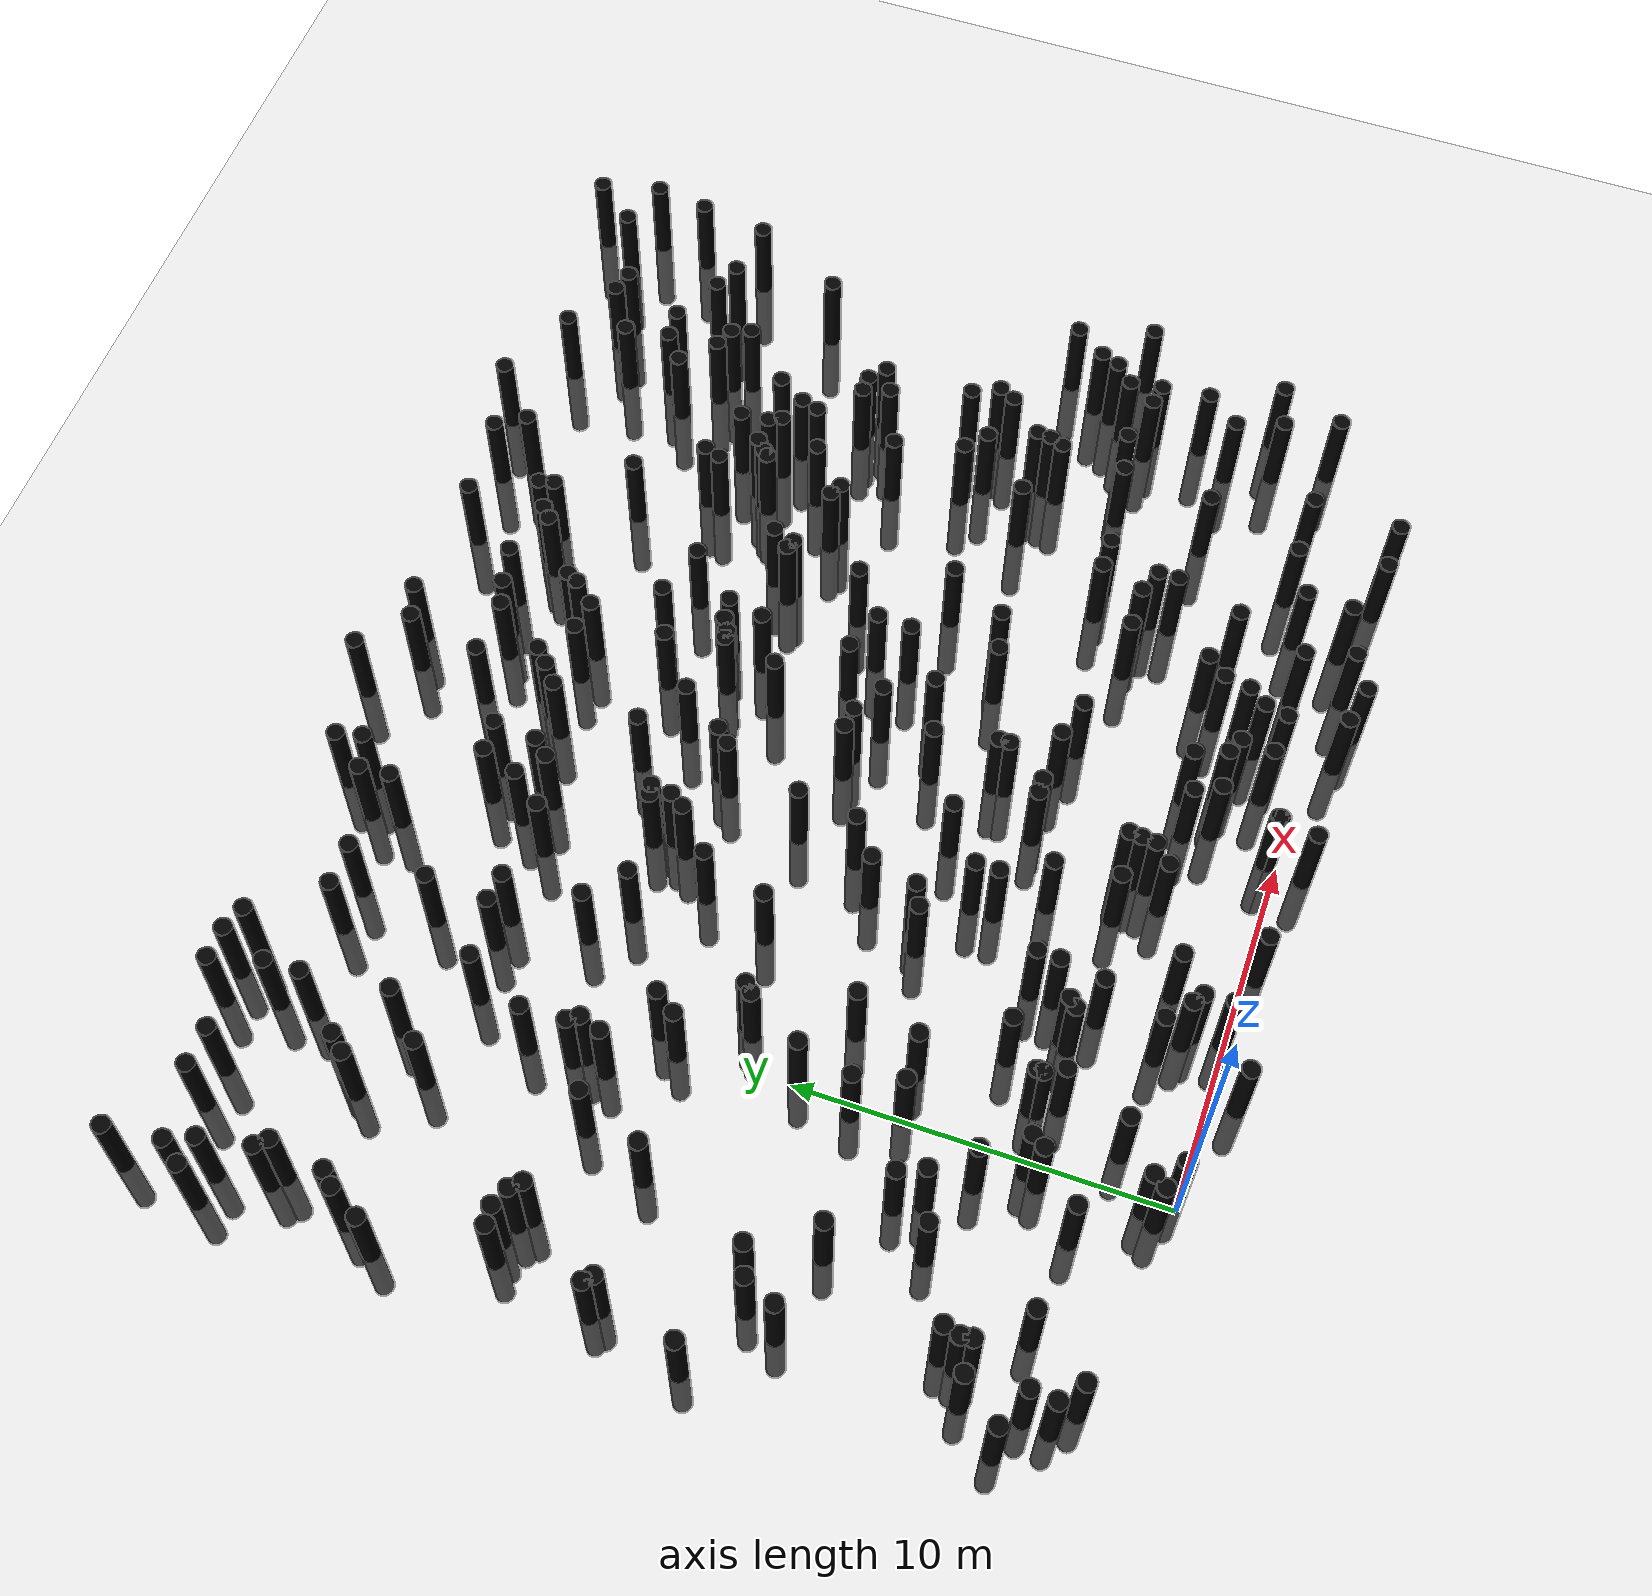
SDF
<sdf version="1.6">
 <world name="huge">
  <include><uri>model://ground_plane</uri></include>
  <include><uri>model://pole</uri><name>pole2</name><pose>-1.81 19.83 0 0 0 0</pose></include>
  <include><uri>model://pole</uri><name>pole5</name><pose>18.44 1.86 0 0 0 0</pose></include>
  <include><uri>model://pole</uri><name>pole7</name><pose>-7.19 12.59 0 0 0 0</pose></include>
  <include><uri>model://pole</uri><name>pole8</name><pose>22.05 4.54 0 0 0 0</pose></include>
  <include><uri>model://pole</uri><name>pole9</name><pose>2.53 5.12 0 0 0 0</pose></include>
  <include><uri>model://pole</uri><name>pole11</name><pose>10.14 0.29 0 0 0 0</pose></include>
  <include><uri>model://pole</uri><name>pole14</name><pose>-7.01 19.04 0 0 0 0</pose></include>
  <include><uri>model://pole</uri><name>pole15</name><pose>10.22 2.6 0 0 0 0</pose></include>
  <include><uri>model://pole</uri><name>pole16</name><pose>23.84 9.63 0 0 0 0</pose></include>
  <include><uri>model://pole</uri><name>pole21</name><pose>16.44 4.69 0 0 0 0</pose></include>
  <include><uri>model://pole</uri><name>pole22</name><pose>10.56 15.59 0 0 0 0</pose></include>
  <include><uri>model://pole</uri><name>pole29</name><pose>11.19 9.9 0 0 0 0</pose></include>
  <include><uri>model://pole</uri><name>pole32</name><pose>14.62 5.5 0 0 0 0</pose></include>
  <include><uri>model://pole</uri><name>pole33</name><pose>-3.95 7.78 0 0 0 0</pose></include>
  <include><uri>model://pole</uri><name>pole34</name><pose>4.9 19.29 0 0 0 0</pose></include>
  <include><uri>model://pole</uri><name>pole38</name><pose>6.32 7.27 0 0 0 0</pose></include>
  <include><uri>model://pole</uri><name>pole47</name><pose>16.76 16.73 0 0 0 0</pose></include>
  <include><uri>model://pole</uri><name>pole48</name><pose>19.7 14.8 0 0 0 0</pose></include>
  <include><uri>model://pole</uri><name>pole56</name><pose>9.98 7.78 0 0 0 0</pose></include>
  <include><uri>model://pole</uri><name>pole57</name><pose>-7.21 2.5 0 0 0 0</pose></include>
  <include><uri>model://pole</uri><name>pole58</name><pose>21.04 11.13 0 0 0 0</pose></include>
  <include><uri>model://pole</uri><name>pole59</name><pose>5.61 18.72 0 0 0 0</pose></include>
  <include><uri>model://pole</uri><name>pole60</name><pose>19.32 4.55 0 0 0 0</pose></include>
  <include><uri>model://pole</uri><name>pole62</name><pose>4.28 3.28 0 0 0 0</pose></include>
  <include><uri>model://pole</uri><name>pole63</name><pose>-0.32 18.33 0 0 0 0</pose></include>
  <include><uri>model://pole</uri><name>pole67</name><pose>-2.12 22.13 0 0 0 0</pose></include>
  <include><uri>model://pole</uri><name>pole72</name><pose>-5.39 14.81 0 0 0 0</pose></include>
  <include><uri>model://pole</uri><name>pole76</name><pose>20.2 1.84 0 0 0 0</pose></include>
  <include><uri>model://pole</uri><name>pole84</name><pose>9.04 11.71 0 0 0 0</pose></include>
  <include><uri>model://pole</uri><name>pole85</name><pose>24.87 22.91 0 0 0 0</pose></include>
  <include><uri>model://pole</uri><name>pole88</name><pose>12.93 21.78 0 0 0 0</pose></include>
  <include><uri>model://pole</uri><name>pole90</name><pose>0.12 7.08 0 0 0 0</pose></include>
  <include><uri>model://pole</uri><name>pole93</name><pose>8.62 20.18 0 0 0 0</pose></include>
  <include><uri>model://pole</uri><name>pole97</name><pose>4.21 18.4 0 0 0 0</pose></include>
  <include><uri>model://pole</uri><name>pole106</name><pose>13.69 2.0 0 0 0 0</pose></include>
  <include><uri>model://pole</uri><name>pole110</name><pose>24.47 7.57 0 0 0 0</pose></include>
  <include><uri>model://pole</uri><name>pole112</name><pose>19.29 17.09 0 0 0 0</pose></include>
  <include><uri>model://pole</uri><name>pole113</name><pose>5.63 15.25 0 0 0 0</pose></include>
  <include><uri>model://pole</uri><name>pole115</name><pose>22.98 8.23 0 0 0 0</pose></include>
  <include><uri>model://pole</uri><name>pole116</name><pose>8.08 21.72 0 0 0 0</pose></include>
  <include><uri>model://pole</uri><name>pole119</name><pose>12.08 1.82 0 0 0 0</pose></include>
  <include><uri>model://pole</uri><name>pole127</name><pose>10.94 19.99 0 0 0 0</pose></include>
  <include><uri>model://pole</uri><name>pole131</name><pose>13.18 0.86 0 0 0 0</pose></include>
  <include><uri>model://pole</uri><name>pole132</name><pose>8.42 3.49 0 0 0 0</pose></include>
  <include><uri>model://pole</uri><name>pole134</name><pose>3.77 1.6 0 0 0 0</pose></include>
  <include><uri>model://pole</uri><name>pole135</name><pose>19.84 9.3 0 0 0 0</pose></include>
  <include><uri>model://pole</uri><name>pole136</name><pose>16.31 18.28 0 0 0 0</pose></include>
  <include><uri>model://pole</uri><name>pole140</name><pose>4.6 23.45 0 0 0 0</pose></include>
  <include><uri>model://pole</uri><name>pole142</name><pose>17.06 0.02 0 0 0 0</pose></include>
  <include><uri>model://pole</uri><name>pole144</name><pose>9.62 21.66 0 0 0 0</pose></include>
  <include><uri>model://pole</uri><name>pole148</name><pose>-6.93 22.61 0 0 0 0</pose></include>
  <include><uri>model://pole</uri><name>pole150</name><pose>17.14 24.68 0 0 0 0</pose></include>
  <include><uri>model://pole</uri><name>pole156</name><pose>-6.97 12.39 0 0 0 0</pose></include>
  <include><uri>model://pole</uri><name>pole158</name><pose>1.39 4.01 0 0 0 0</pose></include>
  <include><uri>model://pole</uri><name>pole160</name><pose>14.68 -0.92 0 0 0 0</pose></include>
  <include><uri>model://pole</uri><name>pole162</name><pose>8.78 16.02 0 0 0 0</pose></include>
  <include><uri>model://pole</uri><name>pole167</name><pose>19.58 21.95 0 0 0 0</pose></include>
  <include><uri>model://pole</uri><name>pole173</name><pose>10.79 15.63 0 0 0 0</pose></include>
  <include><uri>model://pole</uri><name>pole174</name><pose>0.3 13.6 0 0 0 0</pose></include>
  <include><uri>model://pole</uri><name>pole177</name><pose>-3.39 20.68 0 0 0 0</pose></include>
  <include><uri>model://pole</uri><name>pole178</name><pose>-5.07 9.39 0 0 0 0</pose></include>
  <include><uri>model://pole</uri><name>pole180</name><pose>22.59 6.83 0 0 0 0</pose></include>
  <include><uri>model://pole</uri><name>pole181</name><pose>19.92 19.27 0 0 0 0</pose></include>
  <include><uri>model://pole</uri><name>pole183</name><pose>1.92 8.93 0 0 0 0</pose></include>
  <include><uri>model://pole</uri><name>pole184</name><pose>16.18 6.75 0 0 0 0</pose></include>
  <include><uri>model://pole</uri><name>pole185</name><pose>-7.5 18.17 0 0 0 0</pose></include>
  <include><uri>model://pole</uri><name>pole186</name><pose>-2.18 6.58 0 0 0 0</pose></include>
  <include><uri>model://pole</uri><name>pole189</name><pose>12.63 21.5 0 0 0 0</pose></include>
  <include><uri>model://pole</uri><name>pole191</name><pose>9.96 -0.72 0 0 0 0</pose></include>
  <include><uri>model://pole</uri><name>pole193</name><pose>18.75 -0.55 0 0 0 0</pose></include>
  <include><uri>model://pole</uri><name>pole204</name><pose>24.36 19.47 0 0 0 0</pose></include>
  <include><uri>model://pole</uri><name>pole208</name><pose>0.37 22.46 0 0 0 0</pose></include>
  <include><uri>model://pole</uri><name>pole209</name><pose>3.7 23.16 0 0 0 0</pose></include>
  <include><uri>model://pole</uri><name>pole210</name><pose>13.8 21.81 0 0 0 0</pose></include>
  <include><uri>model://pole</uri><name>pole214</name><pose>5.62 9.81 0 0 0 0</pose></include>
  <include><uri>model://pole</uri><name>pole216</name><pose>-7.79 10.07 0 0 0 0</pose></include>
  <include><uri>model://pole</uri><name>pole218</name><pose>-1.0 24.19 0 0 0 0</pose></include>
  <include><uri>model://pole</uri><name>pole219</name><pose>-1.67 24.43 0 0 0 0</pose></include>
  <include><uri>model://pole</uri><name>pole221</name><pose>-1.16 14.54 0 0 0 0</pose></include>
  <include><uri>model://pole</uri><name>pole223</name><pose>10.29 14.09 0 0 0 0</pose></include>
  <include><uri>model://pole</uri><name>pole224</name><pose>8.81 6.35 0 0 0 0</pose></include>
  <include><uri>model://pole</uri><name>pole226</name><pose>22.46 7.73 0 0 0 0</pose></include>
  <include><uri>model://pole</uri><name>pole230</name><pose>11.51 17.73 0 0 0 0</pose></include>
  <include><uri>model://pole</uri><name>pole233</name><pose>18.77 11.49 0 0 0 0</pose></include>
  <include><uri>model://pole</uri><name>pole236</name><pose>17.77 17.75 0 0 0 0</pose></include>
  <include><uri>model://pole</uri><name>pole240</name><pose>20.08 -0.59 0 0 0 0</pose></include>
  <include><uri>model://pole</uri><name>pole245</name><pose>1.4 4.17 0 0 0 0</pose></include>
  <include><uri>model://pole</uri><name>pole247</name><pose>11.77 15.91 0 0 0 0</pose></include>
  <include><uri>model://pole</uri><name>pole249</name><pose>13.78 8.87 0 0 0 0</pose></include>
  <include><uri>model://pole</uri><name>pole251</name><pose>16.16 17.82 0 0 0 0</pose></include>
  <include><uri>model://pole</uri><name>pole253</name><pose>3.11 -0.71 0 0 0 0</pose></include>
  <include><uri>model://pole</uri><name>pole259</name><pose>-0.96 15.13 0 0 0 0</pose></include>
  <include><uri>model://pole</uri><name>pole262</name><pose>4.48 5.09 0 0 0 0</pose></include>
  <include><uri>model://pole</uri><name>pole263</name><pose>-1.16 15.42 0 0 0 0</pose></include>
  <include><uri>model://pole</uri><name>pole265</name><pose>12.01 0.94 0 0 0 0</pose></include>
  <include><uri>model://pole</uri><name>pole267</name><pose>-1.88 5.89 0 0 0 0</pose></include>
  <include><uri>model://pole</uri><name>pole268</name><pose>22.76 5.48 0 0 0 0</pose></include>
  <include><uri>model://pole</uri><name>pole270</name><pose>10.14 0.33 0 0 0 0</pose></include>
  <include><uri>model://pole</uri><name>pole273</name><pose>-2.92 18.71 0 0 0 0</pose></include>
  <include><uri>model://pole</uri><name>pole275</name><pose>7.89 14.79 0 0 0 0</pose></include>
  <include><uri>model://pole</uri><name>pole282</name><pose>-5.3 23.67 0 0 0 0</pose></include>
  <include><uri>model://pole</uri><name>pole283</name><pose>9.6 11.65 0 0 0 0</pose></include>
  <include><uri>model://pole</uri><name>pole284</name><pose>7.91 2.63 0 0 0 0</pose></include>
  <include><uri>model://pole</uri><name>pole291</name><pose>17.37 15.35 0 0 0 0</pose></include>
  <include><uri>model://pole</uri><name>pole295</name><pose>14.13 14.91 0 0 0 0</pose></include>
  <include><uri>model://pole</uri><name>pole299</name><pose>-6.33 3.59 0 0 0 0</pose></include>
  <include><uri>model://pole</uri><name>pole304</name><pose>17.03 6.75 0 0 0 0</pose></include>
  <include><uri>model://pole</uri><name>pole309</name><pose>-7.7 22.72 0 0 0 0</pose></include>
  <include><uri>model://pole</uri><name>pole311</name><pose>19.03 20.11 0 0 0 0</pose></include>
  <include><uri>model://pole</uri><name>pole313</name><pose>-5.6 0.9 0 0 0 0</pose></include>
  <include><uri>model://pole</uri><name>pole316</name><pose>24.65 21.41 0 0 0 0</pose></include>
  <include><uri>model://pole</uri><name>pole317</name><pose>4.44 4.48 0 0 0 0</pose></include>
  <include><uri>model://pole</uri><name>pole318</name><pose>5.42 15.77 0 0 0 0</pose></include>
  <include><uri>model://pole</uri><name>pole321</name><pose>-0.46 3.43 0 0 0 0</pose></include>
  <include><uri>model://pole</uri><name>pole323</name><pose>16.44 5.25 0 0 0 0</pose></include>
  <include><uri>model://pole</uri><name>pole326</name><pose>15.25 0.9 0 0 0 0</pose></include>
  <include><uri>model://pole</uri><name>pole328</name><pose>13.84 12.92 0 0 0 0</pose></include>
  <include><uri>model://pole</uri><name>pole331</name><pose>7.76 8.31 0 0 0 0</pose></include>
  <include><uri>model://pole</uri><name>pole332</name><pose>15.98 14.48 0 0 0 0</pose></include>
  <include><uri>model://pole</uri><name>pole336</name><pose>1.37 7.16 0 0 0 0</pose></include>
  <include><uri>model://pole</uri><name>pole339</name><pose>6.12 20.39 0 0 0 0</pose></include>
  <include><uri>model://pole</uri><name>pole341</name><pose>10.55 1.93 0 0 0 0</pose></include>
  <include><uri>model://pole</uri><name>pole342</name><pose>7.73 19.37 0 0 0 0</pose></include>
  <include><uri>model://pole</uri><name>pole348</name><pose>13.83 2.72 0 0 0 0</pose></include>
  <include><uri>model://pole</uri><name>pole349</name><pose>11.47 12.39 0 0 0 0</pose></include>
  <include><uri>model://pole</uri><name>pole350</name><pose>-5.39 4.38 0 0 0 0</pose></include>
  <include><uri>model://pole</uri><name>pole355</name><pose>-0.24 3.79 0 0 0 0</pose></include>
  <include><uri>model://pole</uri><name>pole357</name><pose>-2.78 14.43 0 0 0 0</pose></include>
  <include><uri>model://pole</uri><name>pole359</name><pose>5.38 14.85 0 0 0 0</pose></include>
  <include><uri>model://pole</uri><name>pole361</name><pose>17.93 9.55 0 0 0 0</pose></include>
  <include><uri>model://pole</uri><name>pole365</name><pose>-1.2 16.64 0 0 0 0</pose></include>
  <include><uri>model://pole</uri><name>pole366</name><pose>15.15 19.98 0 0 0 0</pose></include>
  <include><uri>model://pole</uri><name>pole367</name><pose>20.68 11.87 0 0 0 0</pose></include>
  <include><uri>model://pole</uri><name>pole369</name><pose>4.43 24.14 0 0 0 0</pose></include>
  <include><uri>model://pole</uri><name>pole376</name><pose>13.32 1.49 0 0 0 0</pose></include>
  <include><uri>model://pole</uri><name>pole380</name><pose>7.49 16.89 0 0 0 0</pose></include>
  <include><uri>model://pole</uri><name>pole382</name><pose>5.71 15.83 0 0 0 0</pose></include>
  <include><uri>model://pole</uri><name>pole383</name><pose>21.99 20.03 0 0 0 0</pose></include>
  <include><uri>model://pole</uri><name>pole384</name><pose>13.59 -0.68 0 0 0 0</pose></include>
  <include><uri>model://pole</uri><name>pole387</name><pose>8.46 3.83 0 0 0 0</pose></include>
  <include><uri>model://pole</uri><name>pole394</name><pose>0.18 9.88 0 0 0 0</pose></include>
  <include><uri>model://pole</uri><name>pole399</name><pose>18.62 15.79 0 0 0 0</pose></include>
  <include><uri>model://pole</uri><name>pole400</name><pose>4.67 8.24 0 0 0 0</pose></include>
  <include><uri>model://pole</uri><name>pole406</name><pose>-6.21 8.21 0 0 0 0</pose></include>
  <include><uri>model://pole</uri><name>pole407</name><pose>8.39 3.1 0 0 0 0</pose></include>
  <include><uri>model://pole</uri><name>pole411</name><pose>6.0 19.17 0 0 0 0</pose></include>
  <include><uri>model://pole</uri><name>pole414</name><pose>9.36 24.08 0 0 0 0</pose></include>
  <include><uri>model://pole</uri><name>pole415</name><pose>15.76 5.52 0 0 0 0</pose></include>
  <include><uri>model://pole</uri><name>pole417</name><pose>-6.18 15.29 0 0 0 0</pose></include>
  <include><uri>model://pole</uri><name>pole419</name><pose>9.22 6.36 0 0 0 0</pose></include>
  <include><uri>model://pole</uri><name>pole421</name><pose>20.81 10.68 0 0 0 0</pose></include>
  <include><uri>model://pole</uri><name>pole424</name><pose>20.17 14.78 0 0 0 0</pose></include>
  <include><uri>model://pole</uri><name>pole426</name><pose>21.47 22.59 0 0 0 0</pose></include>
  <include><uri>model://pole</uri><name>pole430</name><pose>9.99 7.48 0 0 0 0</pose></include>
  <include><uri>model://pole</uri><name>pole431</name><pose>10.17 17.17 0 0 0 0</pose></include>
  <include><uri>model://pole</uri><name>pole433</name><pose>-5.47 3.64 0 0 0 0</pose></include>
  <include><uri>model://pole</uri><name>pole440</name><pose>15.14 24.16 0 0 0 0</pose></include>
  <include><uri>model://pole</uri><name>pole447</name><pose>6.81 12.19 0 0 0 0</pose></include>
  <include><uri>model://pole</uri><name>pole448</name><pose>23.69 3.54 0 0 0 0</pose></include>
  <include><uri>model://pole</uri><name>pole450</name><pose>-1.59 2.28 0 0 0 0</pose></include>
  <include><uri>model://pole</uri><name>pole455</name><pose>15.91 2.84 0 0 0 0</pose></include>
  <include><uri>model://pole</uri><name>pole458</name><pose>17.07 17.0 0 0 0 0</pose></include>
  <include><uri>model://pole</uri><name>pole459</name><pose>-7.41 24.87 0 0 0 0</pose></include>
  <include><uri>model://pole</uri><name>pole463</name><pose>1.25 18.53 0 0 0 0</pose></include>
  <include><uri>model://pole</uri><name>pole468</name><pose>10.4 19.38 0 0 0 0</pose></include>
  <include><uri>model://pole</uri><name>pole477</name><pose>6.58 10.53 0 0 0 0</pose></include>
  <include><uri>model://pole</uri><name>pole479</name><pose>-6.22 1.39 0 0 0 0</pose></include>
  <include><uri>model://pole</uri><name>pole480</name><pose>-5.65 15.08 0 0 0 0</pose></include>
  <include><uri>model://pole</uri><name>pole482</name><pose>8.47 23.79 0 0 0 0</pose></include>
  <include><uri>model://pole</uri><name>pole484</name><pose>4.73 0.09 0 0 0 0</pose></include>
  <include><uri>model://pole</uri><name>pole486</name><pose>1.67 3.49 0 0 0 0</pose></include>
  <include><uri>model://pole</uri><name>pole493</name><pose>12.6 11.97 0 0 0 0</pose></include>
  <include><uri>model://pole</uri><name>pole502</name><pose>1.53 22.45 0 0 0 0</pose></include>
  <include><uri>model://pole</uri><name>pole503</name><pose>11.31 2.89 0 0 0 0</pose></include>
  <include><uri>model://pole</uri><name>pole504</name><pose>1.23 11.61 0 0 0 0</pose></include>
  <include><uri>model://pole</uri><name>pole505</name><pose>7.21 3.68 0 0 0 0</pose></include>
  <include><uri>model://pole</uri><name>pole506</name><pose>17.81 16.96 0 0 0 0</pose></include>
  <include><uri>model://pole</uri><name>pole507</name><pose>17.13 1.3 0 0 0 0</pose></include>
  <include><uri>model://pole</uri><name>pole510</name><pose>22.01 6.95 0 0 0 0</pose></include>
  <include><uri>model://pole</uri><name>pole511</name><pose>11.62 2.04 0 0 0 0</pose></include>
  <include><uri>model://pole</uri><name>pole513</name><pose>23.06 1.77 0 0 0 0</pose></include>
  <include><uri>model://pole</uri><name>pole514</name><pose>22.49 3.26 0 0 0 0</pose></include>
  <include><uri>model://pole</uri><name>pole515</name><pose>11.56 14.9 0 0 0 0</pose></include>
  <include><uri>model://pole</uri><name>pole517</name><pose>-5.83 9.09 0 0 0 0</pose></include>
  <include><uri>model://pole</uri><name>pole528</name><pose>-0.25 0.78 0 0 0 0</pose></include>
  <include><uri>model://pole</uri><name>pole530</name><pose>16.33 14.3 0 0 0 0</pose></include>
  <include><uri>model://pole</uri><name>pole535</name><pose>20.47 19.04 0 0 0 0</pose></include>
  <include><uri>model://pole</uri><name>pole537</name><pose>20.85 22.75 0 0 0 0</pose></include>
  <include><uri>model://pole</uri><name>pole546</name><pose>3.71 12.03 0 0 0 0</pose></include>
  <include><uri>model://pole</uri><name>pole552</name><pose>20.63 14.39 0 0 0 0</pose></include>
  <include><uri>model://pole</uri><name>pole558</name><pose>-6.68 19.39 0 0 0 0</pose></include>
  <include><uri>model://pole</uri><name>pole562</name><pose>-6.41 20.93 0 0 0 0</pose></include>
  <include><uri>model://pole</uri><name>pole565</name><pose>-3.16 5.46 0 0 0 0</pose></include>
  <include><uri>model://pole</uri><name>pole566</name><pose>4.68 0.87 0 0 0 0</pose></include>
  <include><uri>model://pole</uri><name>pole568</name><pose>24.46 24.57 0 0 0 0</pose></include>
  <include><uri>model://pole</uri><name>pole570</name><pose>10.29 21.89 0 0 0 0</pose></include>
  <include><uri>model://pole</uri><name>pole572</name><pose>7.52 14.41 0 0 0 0</pose></include>
  <include><uri>model://pole</uri><name>pole576</name><pose>-0.21 8.36 0 0 0 0</pose></include>
  <include><uri>model://pole</uri><name>pole577</name><pose>14.34 15.54 0 0 0 0</pose></include>
  <include><uri>model://pole</uri><name>pole587</name><pose>-4.26 23.62 0 0 0 0</pose></include>
  <include><uri>model://pole</uri><name>pole588</name><pose>14.29 3.27 0 0 0 0</pose></include>
  <include><uri>model://pole</uri><name>pole600</name><pose>1.36 20.27 0 0 0 0</pose></include>
  <include><uri>model://pole</uri><name>pole601</name><pose>-2.54 24.46 0 0 0 0</pose></include>
  <include><uri>model://pole</uri><name>pole605</name><pose>0.31 0.12 0 0 0 0</pose></include>
  <include><uri>model://pole</uri><name>pole607</name><pose>3.49 3.95 0 0 0 0</pose></include>
  <include><uri>model://pole</uri><name>pole610</name><pose>13.88 15.01 0 0 0 0</pose></include>
  <include><uri>model://pole</uri><name>pole611</name><pose>19.89 9.7 0 0 0 0</pose></include>
  <include><uri>model://pole</uri><name>pole621</name><pose>2.03 18.45 0 0 0 0</pose></include>
  <include><uri>model://pole</uri><name>pole625</name><pose>11.78 6.0 0 0 0 0</pose></include>
  <include><uri>model://pole</uri><name>pole627</name><pose>-4.32 2.46 0 0 0 0</pose></include>
  <include><uri>model://pole</uri><name>pole631</name><pose>5.26 8.49 0 0 0 0</pose></include>
  <include><uri>model://pole</uri><name>pole632</name><pose>12.95 17.27 0 0 0 0</pose></include>
  <include><uri>model://pole</uri><name>pole633</name><pose>6.31 6.63 0 0 0 0</pose></include>
  <include><uri>model://pole</uri><name>pole637</name><pose>23.1 16.87 0 0 0 0</pose></include>
  <include><uri>model://pole</uri><name>pole639</name><pose>1.01 11.4 0 0 0 0</pose></include>
  <include><uri>model://pole</uri><name>pole640</name><pose>9.7 9.47 0 0 0 0</pose></include>
  <include><uri>model://pole</uri><name>pole643</name><pose>19.36 10.99 0 0 0 0</pose></include>
  <include><uri>model://pole</uri><name>pole646</name><pose>4.32 13.87 0 0 0 0</pose></include>
  <include><uri>model://pole</uri><name>pole648</name><pose>14.71 10.48 0 0 0 0</pose></include>
  <include><uri>model://pole</uri><name>pole650</name><pose>12.55 11.02 0 0 0 0</pose></include>
  <include><uri>model://pole</uri><name>pole657</name><pose>18.78 16.28 0 0 0 0</pose></include>
  <include><uri>model://pole</uri><name>pole660</name><pose>-7.24 23.33 0 0 0 0</pose></include>
  <include><uri>model://pole</uri><name>pole661</name><pose>-6.16 2.08 0 0 0 0</pose></include>
  <include><uri>model://pole</uri><name>pole662</name><pose>15.66 -0.41 0 0 0 0</pose></include>
  <include><uri>model://pole</uri><name>pole664</name><pose>20.66 18.5 0 0 0 0</pose></include>
  <include><uri>model://pole</uri><name>pole665</name><pose>-2.15 23.1 0 0 0 0</pose></include>
  <include><uri>model://pole</uri><name>pole667</name><pose>10.49 11.13 0 0 0 0</pose></include>
  <include><uri>model://pole</uri><name>pole671</name><pose>8.24 19.8 0 0 0 0</pose></include>
  <include><uri>model://pole</uri><name>pole673</name><pose>20.64 7.29 0 0 0 0</pose></include>
  <include><uri>model://pole</uri><name>pole675</name><pose>10.73 6.29 0 0 0 0</pose></include>
  <include><uri>model://pole</uri><name>pole677</name><pose>-5.51 3.94 0 0 0 0</pose></include>
  <include><uri>model://pole</uri><name>pole678</name><pose>19.7 8.92 0 0 0 0</pose></include>
  <include><uri>model://pole</uri><name>pole679</name><pose>-3.54 12.61 0 0 0 0</pose></include>
  <include><uri>model://pole</uri><name>pole680</name><pose>20.58 20.74 0 0 0 0</pose></include>
  <include><uri>model://pole</uri><name>pole684</name><pose>-0.99 4.89 0 0 0 0</pose></include>
  <include><uri>model://pole</uri><name>pole687</name><pose>-6.67 15.24 0 0 0 0</pose></include>
  <include><uri>model://pole</uri><name>pole692</name><pose>-0.49 0.43 0 0 0 0</pose></include>
  <include><uri>model://pole</uri><name>pole695</name><pose>13.7 22.22 0 0 0 0</pose></include>
  <include><uri>model://pole</uri><name>pole708</name><pose>3.18 15.49 0 0 0 0</pose></include>
  <include><uri>model://pole</uri><name>pole711</name><pose>4.39 1.07 0 0 0 0</pose></include>
  <include><uri>model://pole</uri><name>pole712</name><pose>11.15 15.83 0 0 0 0</pose></include>
  <include><uri>model://pole</uri><name>pole718</name><pose>6.75 -0.26 0 0 0 0</pose></include>
  <include><uri>model://pole</uri><name>pole720</name><pose>9.58 19.51 0 0 0 0</pose></include>
  <include><uri>model://pole</uri><name>pole723</name><pose>-3.77 20.24 0 0 0 0</pose></include>
  <include><uri>model://pole</uri><name>pole724</name><pose>0.97 1.71 0 0 0 0</pose></include>
  <include><uri>model://pole</uri><name>pole725</name><pose>15.65 23.37 0 0 0 0</pose></include>
  <include><uri>model://pole</uri><name>pole726</name><pose>18.27 13.39 0 0 0 0</pose></include>
  <include><uri>model://pole</uri><name>pole732</name><pose>11.33 22.12 0 0 0 0</pose></include>
  <include><uri>model://pole</uri><name>pole734</name><pose>11.11 20.31 0 0 0 0</pose></include>
  <include><uri>model://pole</uri><name>pole738</name><pose>23.51 23.41 0 0 0 0</pose></include>
  <include><uri>model://pole</uri><name>pole741</name><pose>19.51 7.08 0 0 0 0</pose></include>
  <include><uri>model://pole</uri><name>pole742</name><pose>-0.12 13.01 0 0 0 0</pose></include>
  <include><uri>model://pole</uri><name>pole744</name><pose>3.76 22.31 0 0 0 0</pose></include>
  <include><uri>model://pole</uri><name>pole750</name><pose>19.36 23.63 0 0 0 0</pose></include>
  <include><uri>model://pole</uri><name>pole752</name><pose>12.89 23.98 0 0 0 0</pose></include>
  <include><uri>model://pole</uri><name>pole755</name><pose>2.2 16.35 0 0 0 0</pose></include>
  <include><uri>model://pole</uri><name>pole756</name><pose>19.76 20.69 0 0 0 0</pose></include>
  <include><uri>model://pole</uri><name>pole762</name><pose>23.2 8.76 0 0 0 0</pose></include>
  <include><uri>model://pole</uri><name>pole763</name><pose>19.94 14.06 0 0 0 0</pose></include>
  <include><uri>model://pole</uri><name>pole765</name><pose>3.29 3.75 0 0 0 0</pose></include>
  <include><uri>model://pole</uri><name>pole768</name><pose>7.01 5.4 0 0 0 0</pose></include>
  <include><uri>model://pole</uri><name>pole776</name><pose>5.59 1.64 0 0 0 0</pose></include>
  <include><uri>model://pole</uri><name>pole777</name><pose>22.72 19.7 0 0 0 0</pose></include>
  <include><uri>model://pole</uri><name>pole780</name><pose>12.7 8.61 0 0 0 0</pose></include>
  <include><uri>model://pole</uri><name>pole782</name><pose>7.21 24.86 0 0 0 0</pose></include>
  <include><uri>model://pole</uri><name>pole784</name><pose>5.26 20.32 0 0 0 0</pose></include>
  <include><uri>model://pole</uri><name>pole785</name><pose>16.61 16.57 0 0 0 0</pose></include>
  <include><uri>model://pole</uri><name>pole790</name><pose>-6.68 21.22 0 0 0 0</pose></include>
  <include><uri>model://pole</uri><name>pole797</name><pose>17.99 16.61 0 0 0 0</pose></include>
 </world>
</sdf>
